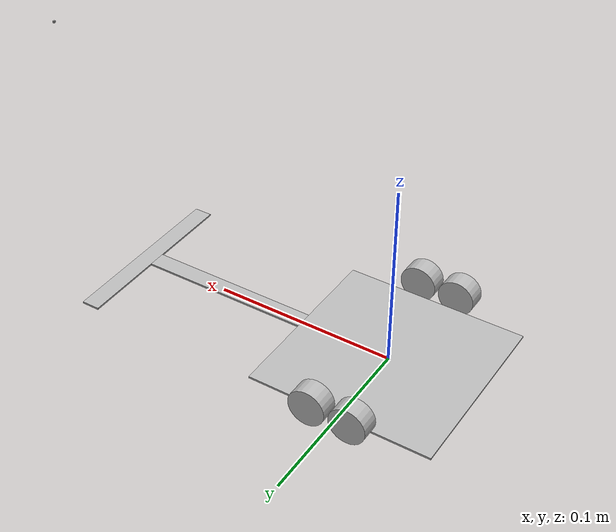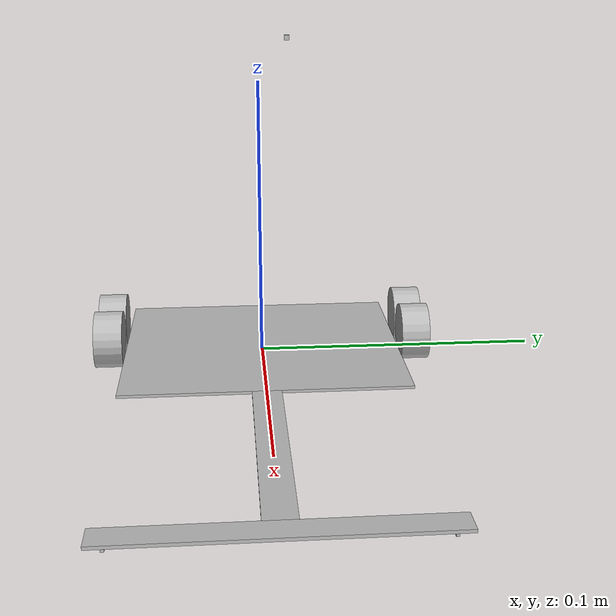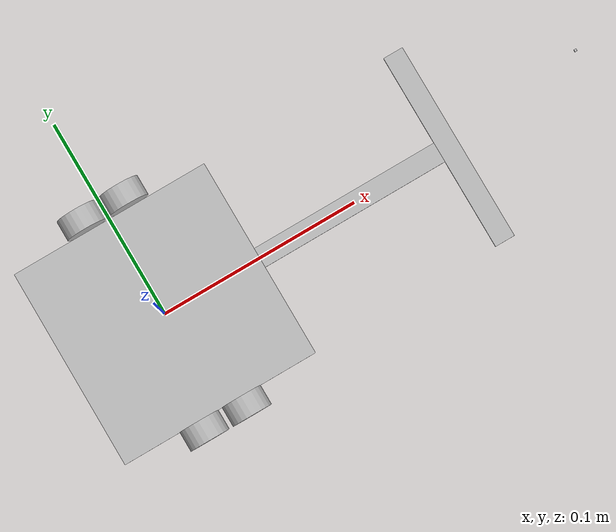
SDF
<?xml version="1.0"?>
<!--
	 SPDX-License-Identifier: GPL-3.0-only

	 Copyright (C) 2021  Haruki Shimotori. All right reserved.
-->

<sdf version="1.5">
	<model name="robotracer">
		<static>false</static>

<!-- ****************** Link ****************** -->
		<link name="chassis">
			<pose>0 0 0.0015 0 0 0</pose>
			<inertial>
				<mass>0.03</mass>
				<inertia>
					<ixx>0.00005</ixx>
					<ixy>0.0</ixy>
					<ixz>0.0</ixz>
					<iyy>0.00005</iyy>
					<iyz>0.0</iyz>
					<izz>0.00005</izz>
				</inertia>
			</inertial>

			<collision name="collision_base">
				<geometry>
					<box>
						<size>0.1 0.1 0.001</size>
					</box>
				</geometry>
			</collision>
			<visual name="visual_base">
				<geometry>
					<box>
						<size>0.1 0.1 0.001</size>
					</box>
				</geometry>
			</visual>

			<collision name="collision_sensor_bar">
				<pose>0.0975 0 0.0 0 0 0</pose>
				<geometry>
					<box>
						<size>0.095 0.01 0.001</size>
					</box>
				</geometry>
			</collision>
			<visual name="visual_sensor_bar">
				<pose>0.0975 0 0.0 0 0 0</pose>
				<geometry>
					<box>
						<size>0.095 0.01 0.001</size>
					</box>
				</geometry>
			</visual>

			<collision name="collision_sensor">
				<pose>0.150 0.0 0.0 0 0 0</pose>
				<geometry>
					<box>
						<size>0.010 0.100 0.001</size>
					</box>
				</geometry>
			</collision>
			<visual name="visual_sensor">
				<pose>0.150 0.0 0.0 0 0 0</pose>
				<geometry>
					<box>
						<size>0.010 0.100 0.001</size>
					</box>
				</geometry>
			</visual>

			<collision name="collision_support_left">
				<pose>0.154 0.045 -0.001 0 0 0</pose>
				<geometry>
					<box>
						<size>0.001 0.001 0.001</size>
					</box>
				</geometry>
				<surface>
					<friction>
						<ode>
							<mu>0</mu>
							<mu2>0</mu2>
							<slip1>1.0</slip1>
							<slip2>1.0</slip2>
						</ode>
					</friction>
				</surface>
			</collision>
			<visual name="visual_support_left">
				<pose>0.154 0.045 -0.001 0 0 0</pose>
				<geometry>
					<box>
						<size>0.001 0.001 0.001</size>
					</box>
				</geometry>
			</visual>
			<collision name="collision_support_right">
				<pose>0.154 -0.045 -0.001 0 0 0</pose>
				<geometry>
					<box>
						<size>0.001 0.001 0.001</size>
					</box>
				</geometry>
				<surface>
					<friction>
						<ode>
							<mu>0</mu>
							<mu2>0</mu2>
							<slip1>1.0</slip1>
							<slip2>1.0</slip2>
						</ode>
					</friction>
				</surface>
			</collision>
			<visual name="visual_support_right">
				<pose>0.154 -0.045 -0.001 0 0 0</pose>
				<geometry>
					<box>
						<size>0.001 0.001 0.001</size>
					</box>
				</geometry>
			</visual>
		</link>

		<link name="right_front_wheel">
			<pose>0.011 -0.055 0.009 1.5707 0 0</pose>

			<inertial>
				<mass>0.005</mass>
				<inertia>
					<ixx>0.000001</ixx>
					<iyy>0.000001</iyy>
					<izz>0.000001</izz>
					<ixy>0</ixy>
					<ixz>0</ixz>
					<iyz>0</iyz>
				</inertia>
			</inertial>

			<collision name="collision">
				<geometry>
					<cylinder>
						<radius>0.01</radius>
						<length>0.01</length>
					</cylinder>
				</geometry>
				<surface>
					<friction>
						<ode>
							<mu>1</mu>
							<mu2>1</mu2>
							<slip1>0.5</slip1>
							<slip2>0</slip2>
						</ode>
					</friction>
				</surface>
			</collision>
			<visual name="visual">
				<geometry>
					<cylinder>
						<radius>0.01</radius>
						<length>0.01</length>
					</cylinder>
				</geometry>
			</visual>
		</link>
		<link name="left_front_wheel">
			<pose>0.011 0.055 0.009 1.5707 0 0</pose>

			<inertial>
				<mass>0.005</mass>
				<inertia>
					<ixx>0.000001</ixx>
					<iyy>0.000001</iyy>
					<izz>0.000001</izz>
					<ixy>0</ixy>
					<ixz>0</ixz>
					<iyz>0</iyz>
				</inertia>
			</inertial>

			<collision name="collision">
				<geometry>
					<cylinder>
						<radius>0.01</radius>
						<length>0.01</length>
					</cylinder>
				</geometry>
				<surface>
					<friction>
						<ode>
							<mu>1</mu>
							<mu2>1</mu2>
							<slip1>0.5</slip1>
							<slip2>0</slip2>
						</ode>
					</friction>
				</surface>
			</collision>
			<visual name="visual">
				<geometry>
					<cylinder>
						<radius>0.01</radius>
						<length>0.01</length>
					</cylinder>
				</geometry>
			</visual>
		</link>
		<link name="right_rear_wheel">
			<pose>-0.011 -0.055 0.009 1.5707 0 0</pose>

			<inertial>
				<mass>0.005</mass>
				<inertia>
					<ixx>0.000001</ixx>
					<iyy>0.000001</iyy>
					<izz>0.000001</izz>
					<ixy>0</ixy>
					<ixz>0</ixz>
					<iyz>0</iyz>
				</inertia>
			</inertial>

			<collision name="collision">
				<geometry>
					<cylinder>
						<radius>0.01</radius>
						<length>0.01</length>
					</cylinder>
				</geometry>
				<surface>
					<friction>
						<ode>
							<mu>1</mu>
							<mu2>1</mu2>
							<slip1>0.5</slip1>
							<slip2>0</slip2>
						</ode>
					</friction>
				</surface>
			</collision>
			<visual name="visual">
				<geometry>
					<cylinder>
						<radius>0.01</radius>
						<length>0.01</length>
					</cylinder>
				</geometry>
			</visual>
		</link>
		<link name="left_rear_wheel">
			<pose>-0.011 0.055 0.009 1.5707 0 0</pose>

			<inertial>
				<mass>0.005</mass>
				<inertia>
					<ixx>0.000001</ixx>
					<iyy>0.000001</iyy>
					<izz>0.000001</izz>
					<ixy>0</ixy>
					<ixz>0</ixz>
					<iyz>0</iyz>
				</inertia>
			</inertial>

			<collision name="collision">
				<geometry>
					<cylinder>
						<radius>0.01</radius>
						<length>0.01</length>
					</cylinder>
				</geometry>
				<surface>
					<friction>
						<ode>
							<mu>1</mu>
							<mu2>1</mu2>
							<slip1>0.5</slip1>
							<slip2>0</slip2>
						</ode>
					</friction>
				</surface>
			</collision>
			<visual name="visual">
				<geometry>
					<cylinder>
						<radius>0.01</radius>
						<length>0.01</length>
					</cylinder>
				</geometry>
			</visual>
		</link>

<!-- ****************** Joint ****************** -->
		<joint type="revolute" name="right_front">
			<pose>0 0 0 0 0 0</pose>
			<child>right_front_wheel</child>
			<parent>chassis</parent>
			<axis>
				<xyz>0 1 0</xyz>
				<use_parent_model_frame>true</use_parent_model_frame>
			</axis>
		</joint>
		<joint type="revolute" name="right_rear">
			<pose>0 0 0 0 0 0</pose>
			<child>right_rear_wheel</child>
			<parent>chassis</parent>
			<axis>
				<xyz>0 1 0</xyz>
				<use_parent_model_frame>true</use_parent_model_frame>
			</axis>
		</joint>
		<joint type="revolute" name="left_front">
			<pose>0 0 0 0 0 0</pose>
			<child>left_front_wheel</child>
			<parent>chassis</parent>
			<axis>
				<xyz>0 1 0</xyz>
				<use_parent_model_frame>true</use_parent_model_frame>
			</axis>
		</joint>
		<joint type="revolute" name="left_rear">
			<pose>0 0 0 0 0 0</pose>
			<child>left_rear_wheel</child>
			<parent>chassis</parent>
			<axis>
				<xyz>0 1 0</xyz>
				<use_parent_model_frame>true</use_parent_model_frame>
			</axis>
		</joint>
		<plugin name="SkidSteerDrivePlugin" filename="libSkidSteerDrivePlugin.so">
			<right_front>right_front</right_front>
			<right_rear>right_rear</right_rear>
			<left_front>left_front</left_front>
			<left_rear>left_rear</left_rear>
			<MaxForce>0.1</MaxForce>
		</plugin>

<!-- ****************** Line sensors **********************-->
	  <include>
		  <uri>model://robotracer_sdf/line_sensor</uri>
		  <pose>0.2 0 0.13 0 0 0</pose>
	  </include>
	  <joint name="line_sensor_joint" type="revolute">
		  <child>line_sensor::link</child>
		  <parent>chassis</parent>
		  <axis>
			  <xyz>0 0 1</xyz>
			  <limit>
				  <upper>0</upper>
				  <lower>0</lower>
			  </limit>
		  </axis>
	  </joint>
  </model>
</sdf>

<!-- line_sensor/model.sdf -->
<sdf version="1.5">
	<model name="line_sensor">
		<pose>0 0 0.05 0 0 0</pose>
		<link name="link">
			<inertial>
				<mass>0.1</mass>
				<inertia>
					<ixx>0.000166667</ixx>
					<iyy>0.000166667</iyy>
					<izz>0.000166667</izz>
				</inertia>
			</inertial>
			<collision name="collision">
				<geometry>
					<box>
						<size>0.001 0.001 0.001</size>
					</box>
				</geometry>
			</collision>
			<visual name="visual">
				<geometry>
					<box>
						<size>0.001 0.001 0.001</size>
					</box>
				</geometry>
			</visual>
			<sensor name="camera" type="camera">
				<camera>
					<horizontal_fov>1.047</horizontal_fov>
					<image>
						<width>100</width>
						<height>100</height>
					</image>
					<clip>
						<near>0.1</near>
						<far>100</far>
					</clip>
				</camera>
				<always_on>1</always_on>
				<update_rate>30</update_rate>
				<visualize>true</visualize>
			</sensor>
		</link>
	</model>
</sdf>
